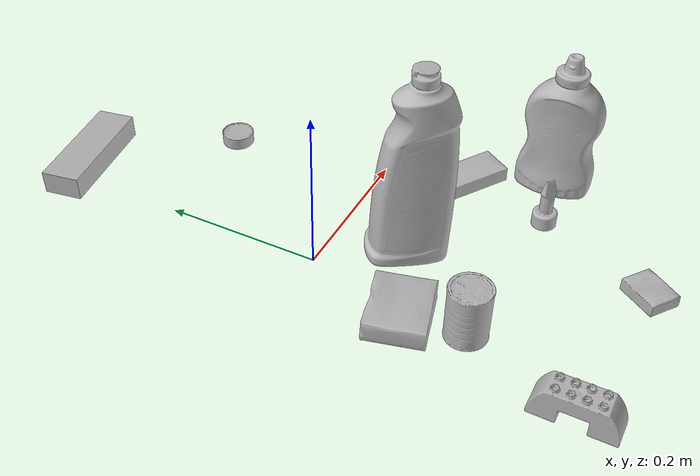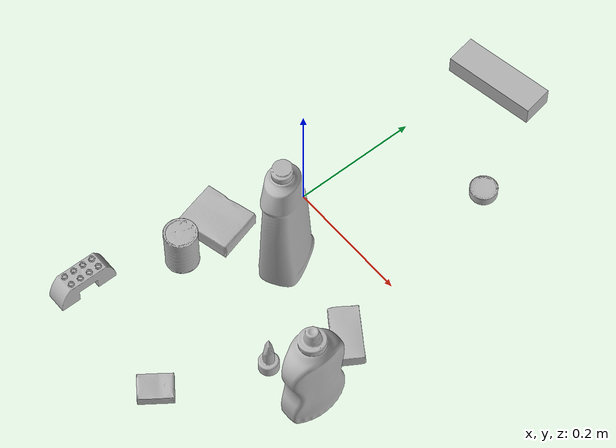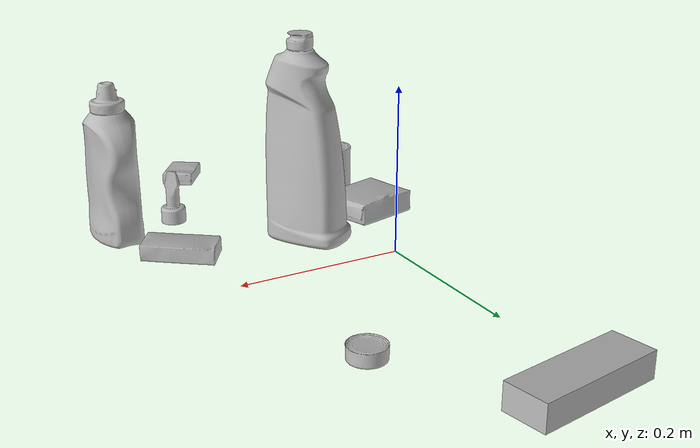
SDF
<sdf version="1.4">
  <world name="default">
    <light name="light1" type="point">
      <pose>0 0 1 0 0 0</pose>
      <diffuse>3 3 3 1</diffuse>
      <specular>3 3 3 1</specular>
    </light>
    <light name="light2" type="point">
      <pose>0 0.5 2 0 0 0</pose>
      <diffuse>1 1 1 1</diffuse>
      <specular>1 1 1 1</specular>
    </light>
    <light name="light3" type="point">
      <pose>0 0.5 2 0 0 0</pose>
      <diffuse>3 3 3 1</diffuse>
      <specular>3 3 3 1</specular>
    </light>
    <scene>
      <ambient>0.7 0.7 0.7</ambient>
    </scene>
    <model name="bottle1">
      <link name="link_bottle1">
        <collision name="default">
          <geometry>
            <mesh>
              <uri>model://mustard_bottle/collision_meshes/collision.obj</uri>
              <scale>1.0 1.0 1.0</scale>
            </mesh>
          </geometry>
          <surface>
            <friction>
              <ode>
                <mu>0.5</mu>
                <mu2>0.5</mu2>
              </ode>
            </friction>
          <contact>
        <ode>
            <max_vel>0</max_vel>
            <min_depth>0.0001</min_depth>
            <kp>1e8</kp>
        </ode>
    </contact></surface>
        </collision>
        <visual name="default">
          <geometry>
            <mesh>
              <uri>model://mustard_bottle/visual_meshes/visual.dae</uri>
              <scale>1.0 1.0 1.0</scale>
            </mesh>
          </geometry>
        </visual>
        <inertial>
          <mass>0.8303800225257874</mass>
          <pose>0.0005032453336752951 -0.00015647402324248105 -0.017475798726081848 0.0004182333015560062 0.0009465791044325989 0.02485372608929167</pose>
          <inertia>
            <ixx>0.0023058522</ixx>
            <iyy>0.0020231898</iyy>
            <izz>0.00060770847</izz>
            <ixy>0</ixy>
            <ixz>0</ixz>
            <iyz>0</iyz>
          </inertia>
        </inertial>
      </link>
      <pose>0.27149149775505066 -0.20593585073947906 0.09583088010549545 -0.012050124448300436 -0.004890254580231898 -3.122330770439487</pose>
    </model>
    <model name="bottle2">
      <link name="link_bottle2">
        <collision name="default">
          <geometry>
            <mesh>
              <uri>model://bleach_cleanser/collision_meshes/collision.obj</uri>
              <scale>1.0 1.0 1.0</scale>
            </mesh>
          </geometry>
          <surface>
            <friction>
              <ode>
                <mu>0.5</mu>
                <mu2>0.5</mu2>
              </ode>
            </friction>
          <contact>
        <ode>
            <max_vel>0</max_vel>
            <min_depth>0.0001</min_depth>
            <kp>1e8</kp>
        </ode>
    </contact></surface>
        </collision>
        <visual name="default">
          <geometry>
            <mesh>
              <uri>model://bleach_cleanser/visual_meshes/visual.dae</uri>
              <scale>1.0 1.0 1.0</scale>
            </mesh>
          </geometry>
        </visual>
        <inertial>
          <mass>1.2443958520889282</mass>
          <pose>0.00012193184375064448 0.0037838828284293413 -0.02442161552608013 -0.07381670616387152 0.00042011519151103325 -0.006875073427896589</pose>
          <inertia>
            <ixx>0.006056655</ixx>
            <iyy>0.005643917</iyy>
            <izz>0.0010355307</izz>
            <ixy>0</ixy>
            <ixz>0</ixz>
            <iyz>0</iyz>
          </inertia>
        </inertial>
      </link>
      <pose>0.06886597722768784 -0.08985395729541779 0.12578418850898743 -0.00019901987949528808 1.7841896977208042e-05 -2.5691712465695478</pose>
    </model>
    <model name="toy1">
      <link name="link_toy1">
        <collision name="default">
          <geometry>
            <mesh>
              <uri>model://e_lego_duplo/collision_meshes/collision.obj</uri>
              <scale>1.0 1.0 1.0</scale>
            </mesh>
          </geometry>
          <surface>
            <friction>
              <ode>
                <mu>0.5</mu>
                <mu2>0.5</mu2>
              </ode>
            </friction>
          <contact>
        <ode>
            <max_vel>0</max_vel>
            <min_depth>0.0001</min_depth>
            <kp>1e8</kp>
        </ode>
    </contact></surface>
        </collision>
        <visual name="default">
          <geometry>
            <mesh>
              <uri>model://e_lego_duplo/visual_meshes/visual.dae</uri>
              <scale>1.0 1.0 1.0</scale>
            </mesh>
          </geometry>
        </visual>
        <inertial>
          <mass>0.09737597405910492</mass>
          <pose>0.00032560466206632555 0.00023485408746637404 0.00195214559789747 -0.022567666099209266 -6.826041083389806e-05 -0.0076251575404409295</pose>
          <inertia>
            <ixx>2.0306108e-05</ixx>
            <iyy>8.3341496e-05</iyy>
            <izz>8.115786e-05</izz>
            <ixy>0</ixy>
            <ixz>0</ixz>
            <iyz>0</iyz>
          </inertia>
        </inertial>
      </link>
      <pose>-0.08255650848150253 -0.3425106406211853 0.021808689460158348 1.2533061841668508e-05 -3.870121653037593e-07 -1.5714594567820346</pose>
    </model>
    <model name="toy2">
      <link name="link_toy2">
        <collision name="default">
          <geometry>
            <mesh>
              <uri>model://e_toy_airplane/collision_meshes/collision.obj</uri>
              <scale>1.0 1.0 1.0</scale>
            </mesh>
          </geometry>
          <surface>
            <friction>
              <ode>
                <mu>0.5</mu>
                <mu2>0.5</mu2>
              </ode>
            </friction>
          <contact>
        <ode>
            <max_vel>0</max_vel>
            <min_depth>0.0001</min_depth>
            <kp>1e8</kp>
        </ode>
    </contact></surface>
        </collision>
        <visual name="default">
          <geometry>
            <mesh>
              <uri>model://e_toy_airplane/visual_meshes/visual.dae</uri>
              <scale>1.0 1.0 1.0</scale>
            </mesh>
          </geometry>
        </visual>
        <inertial>
          <mass>0.02463557943701744</mass>
          <pose>0.0001174048229586333 -2.2482929125544615e-05 -0.011187203228473663 0.005518471763615081 0.009228316378097946 0.15041226495803456</pose>
          <inertia>
            <ixx>7.519061e-06</ixx>
            <iyy>7.442144e-06</iyy>
            <izz>2.2597733e-06</izz>
            <ixy>0</ixy>
            <ixz>0</ixz>
            <iyz>0</iyz>
          </inertia>
        </inertial>
      </link>
      <pose>0.19105231761932373 -0.22009716928005219 0.03321219980716705 6.358782417435093e-05 -9.312613959439128e-05 0.7934081269849397</pose>
    </model>
    <model name="can1">
      <link name="link_can1">
        <collision name="default">
          <geometry>
            <mesh>
              <uri>model://master_chef_can/collision_meshes/collision.obj</uri>
              <scale>0.5 0.5 0.5</scale>
            </mesh>
          </geometry>
          <surface>
            <friction>
              <ode>
                <mu>0.5</mu>
                <mu2>0.5</mu2>
              </ode>
            </friction>
          <contact>
        <ode>
            <max_vel>0</max_vel>
            <min_depth>0.0001</min_depth>
            <kp>1e8</kp>
        </ode>
    </contact></surface>
        </collision>
        <visual name="default">
          <geometry>
            <mesh>
              <uri>model://master_chef_can/visual_meshes/visual.dae</uri>
              <scale>0.5 0.5 0.5</scale>
            </mesh>
          </geometry>
        </visual>
        <inertial>
          <mass>0.10604178160429001</mass>
          <pose>-4.6619643399026245e-05 1.3926852204804163e-07 -5.079910988570191e-05 -0.0017995162277820833 0.0006479167566960504 -0.6102671332965355</pose>
          <inertia>
            <ixx>6.2239335e-05</ixx>
            <iyy>6.178125e-05</iyy>
            <izz>3.439199e-05</izz>
            <ixy>0</ixy>
            <ixz>0</ixz>
            <iyz>0</iyz>
          </inertia>
        </inertial>
      </link>
      <pose>-0.02799147367477417 -0.20399236679077148 0.03530198335647583 -1.1459334583989927e-06 -7.833204112477597e-07 1.8295088435874676</pose>
    </model>
    <model name="can2">
      <link name="link_can2">
        <collision name="default">
          <geometry>
            <mesh>
              <uri>model://tuna_fish_can/collision_meshes/collision.obj</uri>
              <scale>0.5 0.5 0.5</scale>
            </mesh>
          </geometry>
          <surface>
            <friction>
              <ode>
                <mu>0.5</mu>
                <mu2>0.5</mu2>
              </ode>
            </friction>
          <contact>
        <ode>
            <max_vel>0</max_vel>
            <min_depth>0.0001</min_depth>
            <kp>1e8</kp>
        </ode>
    </contact></surface>
        </collision>
        <visual name="default">
          <geometry>
            <mesh>
              <uri>model://tuna_fish_can/visual_meshes/visual.dae</uri>
              <scale>0.5 0.5 0.5</scale>
            </mesh>
          </geometry>
        </visual>
        <inertial>
          <mass>0.028372401371598244</mass>
          <pose>-2.0361669157864526e-05 -7.256527169374749e-06 -0.0005269024986773729 -0.0017944775646394609 0.00017161727950706725 0.2405381123423382</pose>
          <inertia>
            <ixx>3.8359926e-06</ixx>
            <iyy>3.8200033e-06</iyy>
            <izz>6.5639315e-06</izz>
            <ixy>0</ixy>
            <ixz>0</ixz>
            <iyz>0</iyz>
          </inertia>
        </inertial>
      </link>
      <pose>0.1648709923028946 0.20864112675189972 0.008520001545548439 1.3108834036428975e-08 1.5712882795181205e-08 -2.285725696496378</pose>
    </model>
    <model name="box1">
      <link name="link_box1">
        <collision name="default">
          <geometry>
            <mesh>
              <uri>model://jenga/collision_meshes/collision.obj</uri>
              <scale>1.0 1.0 1.0</scale>
            </mesh>
          </geometry>
          <surface>
            <friction>
              <ode>
                <mu>0.5</mu>
                <mu2>0.5</mu2>
              </ode>
            </friction>
          <contact>
        <ode>
            <max_vel>0</max_vel>
            <min_depth>0.0001</min_depth>
            <kp>1e8</kp>
        </ode>
    </contact></surface>
        </collision>
        <visual name="default">
          <geometry>
            <mesh>
              <uri>model://jenga/visual_meshes/visual.dae</uri>
              <scale>1.0 1.0 1.0</scale>
            </mesh>
          </geometry>
        </visual>
        <inertial>
          <mass>0.19909408688545227</mass>
          <pose>-2.502855807051674e-07 -0.0001025000965455547 -4.0923401684267446e-05 0.0 -7.34215461761844e-07 0.0</pose>
          <inertia>
            <ixx>5.509416e-05</ixx>
            <iyy>0.00037331658</iyy>
            <izz>0.00039854718</izz>
            <ixy>0</ixy>
            <ixz>0</ixz>
            <iyz>0</iyz>
          </inertia>
        </inertial>
      </link>
      <pose>0.03261498734354973 0.3570961356163025 0.01499999687075615 6.069059681199912e-09 -9.242992159387259e-10 -2.975297662445751</pose>
    </model>
    <model name="box2">
      <link name="link_box2">
        <collision name="default">
          <geometry>
            <mesh>
              <uri>model://cracker_box/collision_meshes/collision.obj</uri>
              <scale>0.25 0.25 0.25</scale>
            </mesh>
          </geometry>
          <surface>
            <friction>
              <ode>
                <mu>0.5</mu>
                <mu2>0.5</mu2>
              </ode>
            </friction>
          <contact>
        <ode>
            <max_vel>0</max_vel>
            <min_depth>0.0001</min_depth>
            <kp>1e8</kp>
        </ode>
    </contact></surface>
        </collision>
        <visual name="default">
          <geometry>
            <mesh>
              <uri>model://cracker_box/visual_meshes/visual.dae</uri>
              <scale>0.25 0.25 0.25</scale>
            </mesh>
          </geometry>
        </visual>
        <inertial>
          <mass>0.04114612191915512</mass>
          <pose>0.00023660354781895876 6.358561950037256e-05 -0.0004257383698131889 -0.00031620780631524763 -0.011106488668660274 0.002546795934166242</pose>
          <inertia>
            <ixx>6.5410845e-06</ixx>
            <iyy>1.0800616e-05</iyy>
            <izz>1.5413472e-05</izz>
            <ixy>0</ixy>
            <ixz>0</ixz>
            <iyz>0</iyz>
          </inertia>
        </inertial>
      </link>
      <pose>0.12118886411190033 -0.3667559027671814 0.009096027351915836 -0.014050388144858865 -0.005016848500189529 -2.205710478545465</pose>
    </model>
    <model name="box3">
      <link name="link_box3">
        <collision name="default">
          <geometry>
            <mesh>
              <uri>model://gelatin_box/collision_meshes/collision.obj</uri>
              <scale>1.0 1.0 1.0</scale>
            </mesh>
          </geometry>
          <surface>
            <friction>
              <ode>
                <mu>0.5</mu>
                <mu2>0.5</mu2>
              </ode>
            </friction>
          <contact>
        <ode>
            <max_vel>0</max_vel>
            <min_depth>0.0001</min_depth>
            <kp>1e8</kp>
        </ode>
    </contact></surface>
        </collision>
        <visual name="default">
          <geometry>
            <mesh>
              <uri>model://gelatin_box/visual_meshes/visual.dae</uri>
              <scale>1.0 1.0 1.0</scale>
            </mesh>
          </geometry>
        </visual>
        <inertial>
          <mass>0.2244011014699936</mass>
          <pose>0.00043196187471039593 0.00011156871914863586 -0.00036403213744051754 -0.001050372105108351 -0.004755819619724262 0.01644056133527167</pose>
          <inertia>
            <ixx>0.00015840889</ixx>
            <iyy>0.000113150636</iyy>
            <izz>0.0002411336</izz>
            <ixy>0</ixy>
            <ixz>0</ixz>
            <iyz>0</iyz>
          </inertia>
        </inertial>
      </link>
      <pose>-0.03931521624326706 -0.13022397458553314 0.015168318524956703 0.005597476500760812 -0.007304585353738208 1.812043521981668</pose>
    </model>
    <model name="box4">
      <link name="link_box4">
        <collision name="default">
          <geometry>
            <mesh>
              <uri>model://sugar_box/collision_meshes/collision.obj</uri>
              <scale>0.5 0.5 0.5</scale>
            </mesh>
          </geometry>
          <surface>
            <friction>
              <ode>
                <mu>0.5</mu>
                <mu2>0.5</mu2>
              </ode>
            </friction>
          <contact>
        <ode>
            <max_vel>0</max_vel>
            <min_depth>0.0001</min_depth>
            <kp>1e8</kp>
        </ode>
    </contact></surface>
        </collision>
        <visual name="default">
          <geometry>
            <mesh>
              <uri>model://sugar_box/visual_meshes/visual.dae</uri>
              <scale>0.5 0.5 0.5</scale>
            </mesh>
          </geometry>
        </visual>
        <inertial>
          <mass>0.11117161065340042</mass>
          <pose>0.0005171863595023751 1.9245546354795806e-05 -0.00018182402709499002 -0.0004046265622990317 0.001050663638873437 0.002615378555930204</pose>
          <inertia>
            <ixx>2.3156968e-05</ixx>
            <iyy>7.4848074e-05</iyy>
            <izz>8.960209e-05</izz>
            <ixy>0</ixy>
            <ixz>0</ixz>
            <iyz>0</iyz>
          </inertia>
        </inertial>
      </link>
      <pose>0.22634834051132202 -0.1072825938463211 0.011399305425584316 0.0007756172871390779 -0.023433306888796416 -0.5955327484262698</pose>
    </model>
  <physics type="ode">
      <max_contacts>50</max_contacts>
      <ode>
        <solver>
          <type>quick</type>
          <iters>75</iters>
        </solver>
        <constraints>
          <contact_max_correcting_vel>0</contact_max_correcting_vel>
          <contact_surface_layer>0</contact_surface_layer>
        </constraints>
      </ode>
    </physics></world>
</sdf>
